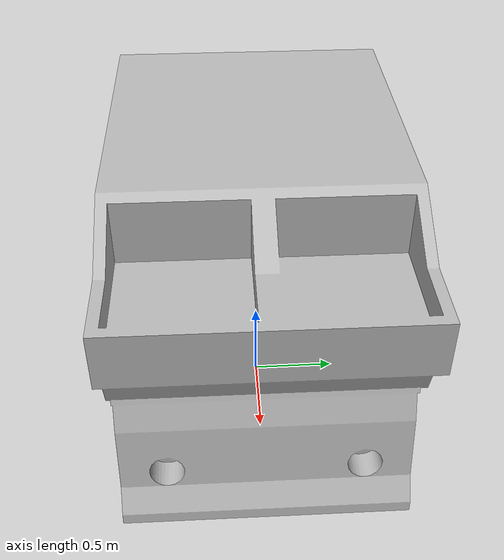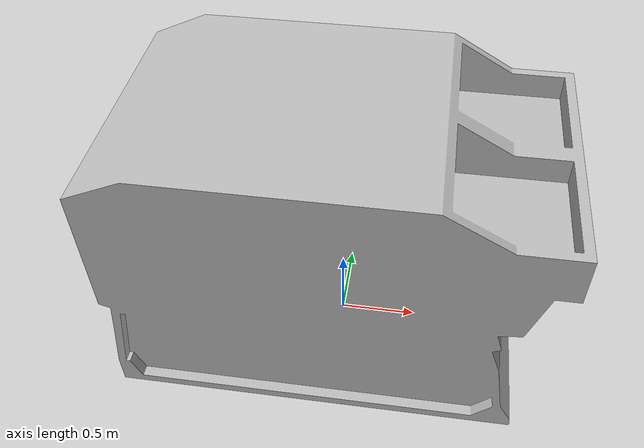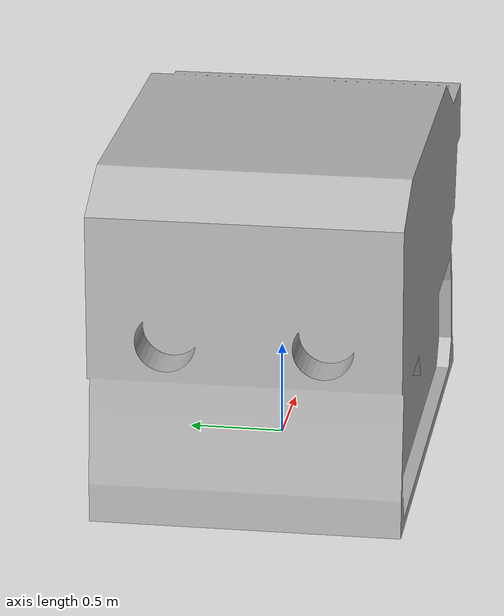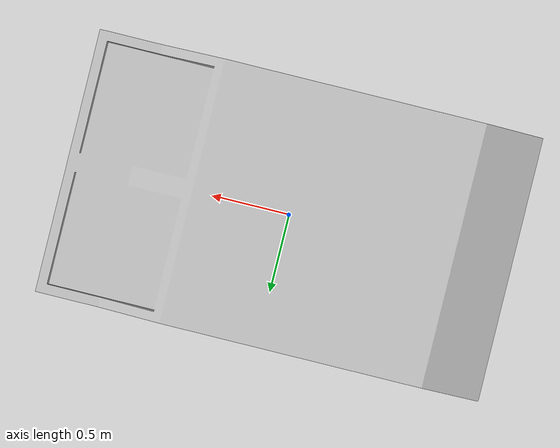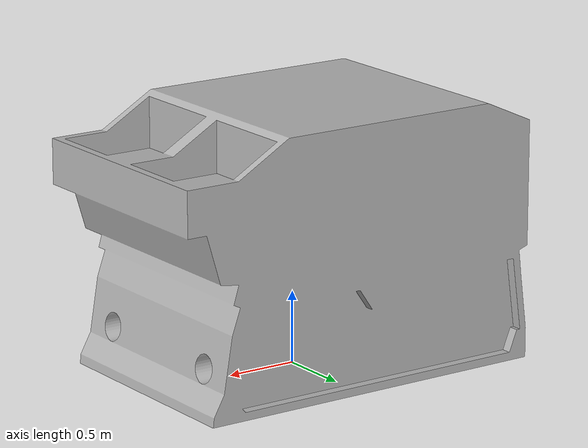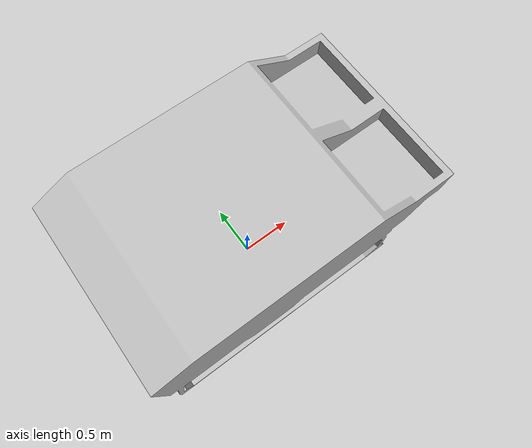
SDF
<?xml version="1.0"?>
<sdf version="1.6">
  <model name="eROV">
    <static>true</static>
    <link name="base_link">
      <visual name="visual">
	<pose> 0 0 0 0 0 1.5708 </pose>
        <geometry>
          <mesh>
            <scale>1 1 1</scale>
            <uri>model://erov/mesh/erov.dae</uri>
          </mesh>
        </geometry>
      </visual>
      <collision name="collision">
        <pose>0 0 0.9 0 0 0</pose>
        <geometry>
          <box>
            <size>2.7 1.6 1.8</size>
          </box>
        </geometry>
      </collision>
    </link>
  </model>
</sdf>
